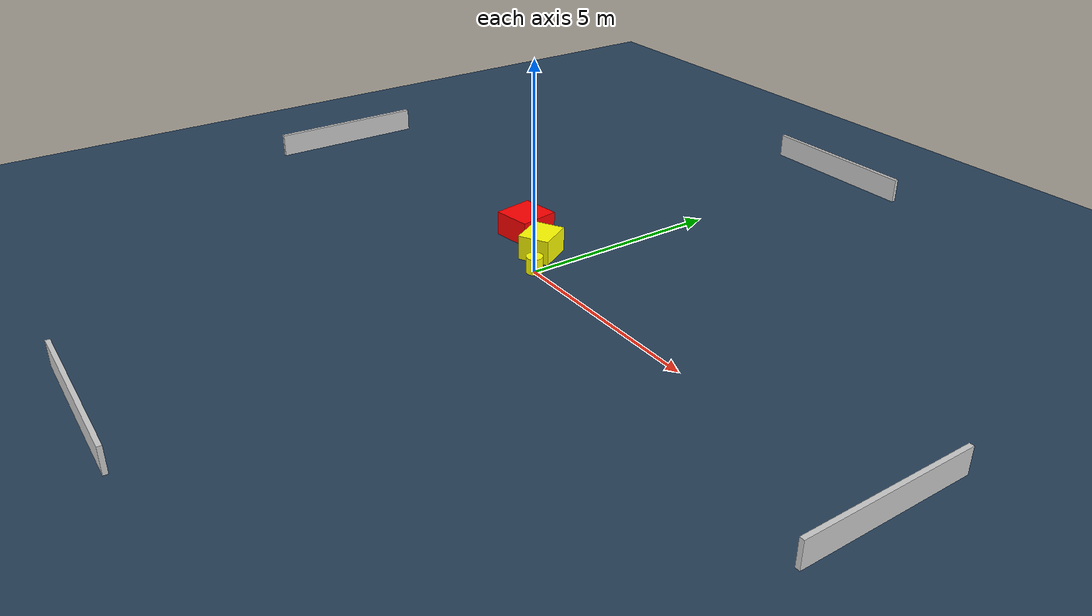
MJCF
<?xml version="1.0" ?>
<mujoco model="generated_environment">
  <option timestep="0.01" integrator="RK4" cone="elliptic"/>
  <default>
    <geom density="1"/>
  </default>
  <asset>
    <texture builtin="gradient" height="3072" name="skybox" rgb1="0.3 0.5 0.7" rgb2="0 0 0" type="skybox" width="512"/>
    <texture builtin="checker" height="300" name="groundplane" rgb1="0.2 0.3 0.4" rgb2="0.1 0.2 0.3" type="2d" width="300"/>
    <material name="groundplane" reflectance="0.2" texrepeat="5 5" texture="groundplane"/>
  </asset>
  <worldbody>
    <light dir="0 0 -1" directional="true" pos="0 0 1.5"/>
    <geom condim="3" friction="0.5 0.005 0.001" material="groundplane" name="floor" pos="0 0 0" size="0 0 0.05" type="plane"/>
    <body name="walls">
      <geom name="wall_1" condim="4" pos="-10.0 0.0 0.3" rgba="0.800000011920929 0.800000011920929 0.800000011920929 1.0" size="0.05 2.0 0.3" type="box"/>
      <geom name="wall_2" condim="4" pos="10.0 0.0 0.3" rgba="0.800000011920929 0.800000011920929 0.800000011920929 1.0" size="0.05 2.0 0.3" type="box"/>
      <geom name="wall_3" condim="4" pos="0.0 -10.0 0.3" rgba="0.800000011920929 0.800000011920929 0.800000011920929 1.0" size="2.0 0.05 0.3" type="box"/>
      <geom name="wall_4" condim="4" pos="0.0 10.0 0.3" rgba="0.800000011920929 0.800000011920929 0.800000011920929 1.0" size="2.0 0.05 0.3" type="box"/>
    </body>
    <body name="robot">
      <joint name="joint_x" type="slide" pos="0 0 0" axis="1 0 0"/>
      <joint name="joint_y" type="slide" pos="0 0 0" axis="0 1 0"/>
      <geom name="robot" type="cylinder" pos="0.0 0.0 0.2" size="0.2 0.2 0.0" mass="5.0" friction="1.0 0.005 0.0001" condim="4" rgba="1.0 1.0 0.0 1.0"/>
    </body>
    <body name="obstacle_1_movable">
      <geom name="obstacle_1_movable" condim="4" pos="-0.6275678087813696 0.6130936560592238 0.3" euler="0 0 299.6173350224167" friction="0.0 0.005 0.001" rgba="1.0 1.0 0.0 1.0" size="0.4437052598054266 0.380420800144887 0.3" type="box" mass="0.1"/>
      <joint type="free"/>
    </body>
    <body name="obstacle_2_static">
      <geom name="obstacle_2_static" condim="4" pos="-1.7390904353377168 0.9212339633725308 0.3" euler="0 0 279.3514432342099" friction="0.0 0.005 0.001" rgba="1.0 0.0 0.0 1.0" size="0.493403550558355 0.48042170962886216 0.3" type="box"/>
    </body>
  </worldbody>
  <actuator>
    <motor name="actuator_x" joint="joint_x" gear="1" ctrlrange="-1 1"/>
    <motor name="actuator_y" joint="joint_y" gear="1" ctrlrange="-1 1"/>
  </actuator>
</mujoco>
